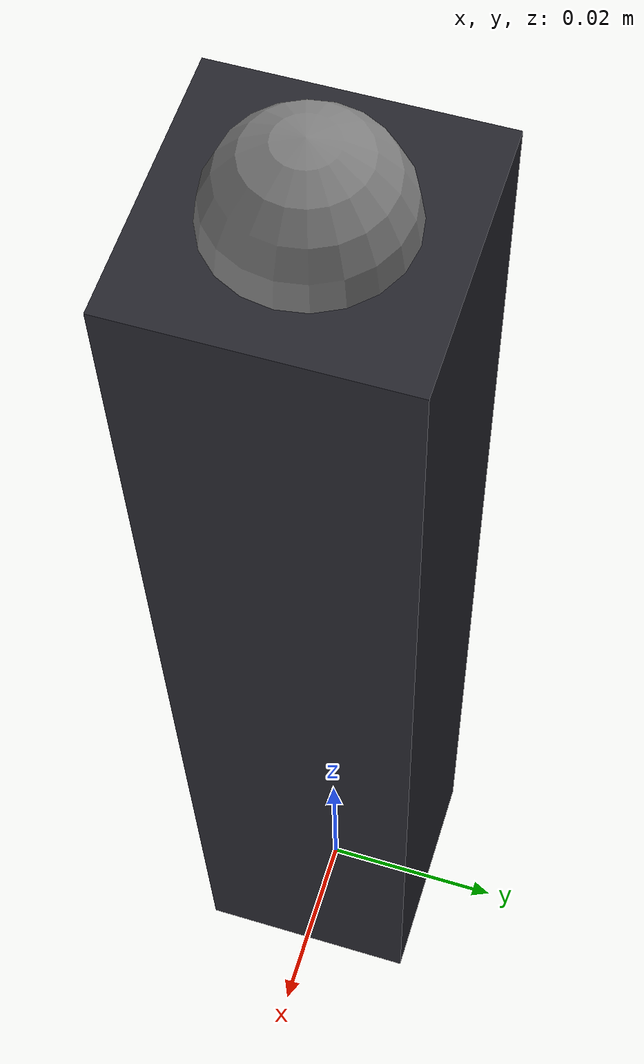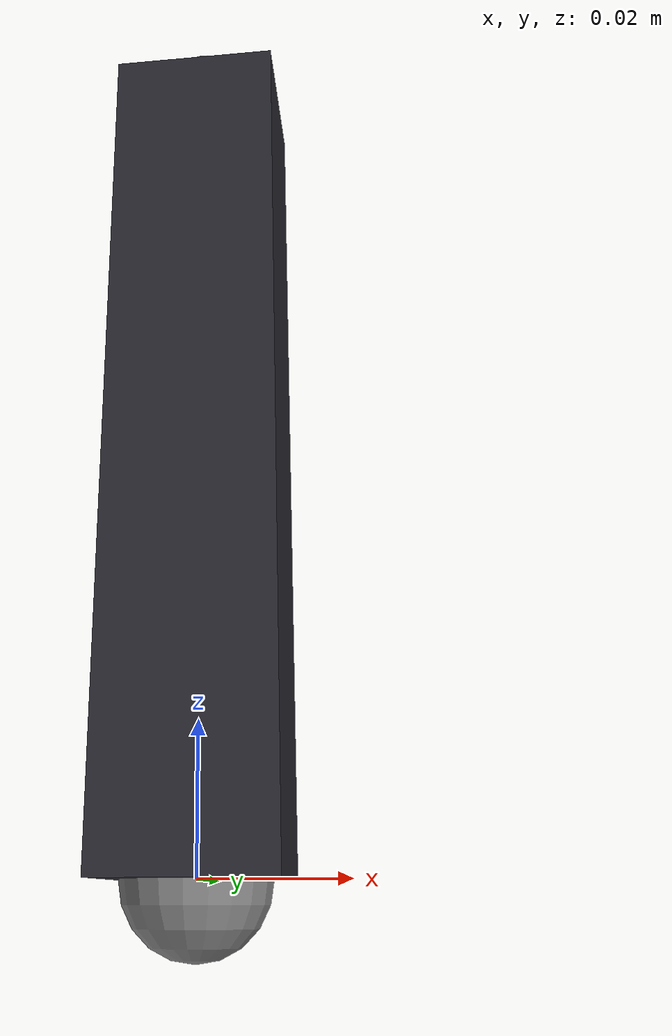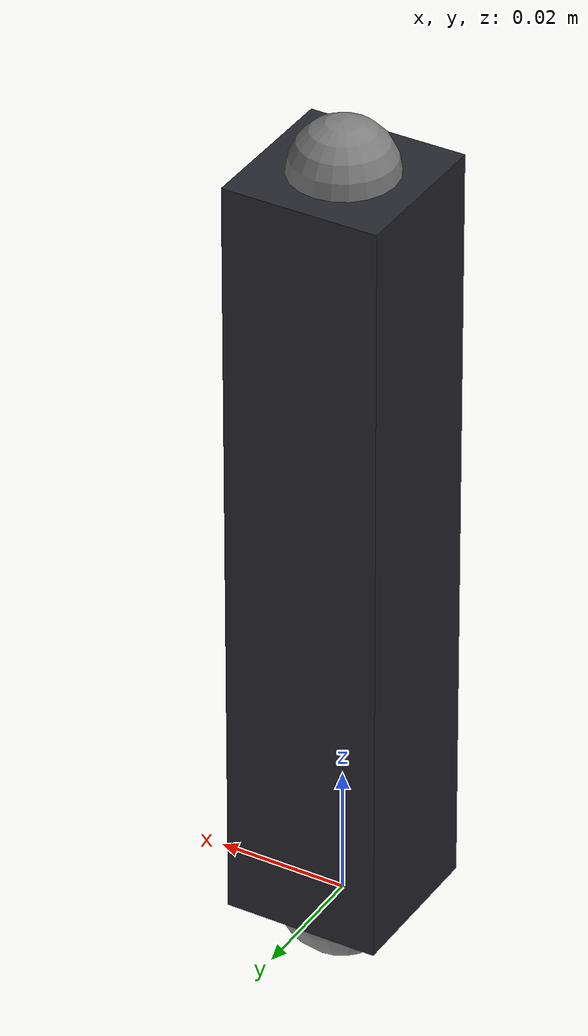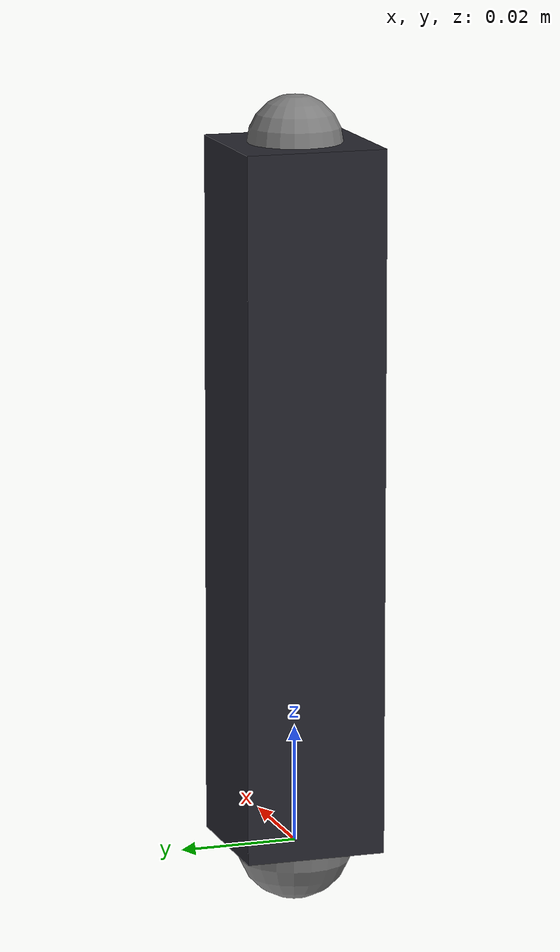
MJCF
<mujoco model="ee_peg">
  <worldbody>
    <body name="ee_frame" pos="0 0 0" gravcomp="1">
      <site name="ee_site" pos="0 0 0" size="0.01" />

      <body name="peg_body" pos="0 0 0" quat="1 0 0 0" gravcomp="1">
        <!-- Pairs with the socket walls and nothing else: both masks against
             the arm are 0, so the tool never hits the arm carrying it. -->
        <geom name="peg" type="box" size="0.012 0.012 0.06" pos="0 0 0.06"
          mass="0.2" contype="8" conaffinity="4"
          friction="0.3" condim="3"
          solref="0.02 1.0" solimp="0.9 0.95 0.002 0.5 2"
          rgba="0.15 0.15 0.18 1" />
        <site name="peg_tip" pos="0 0 0.12" size="0.008" />
      </body>
    </body>
  </worldbody>
</mujoco>
